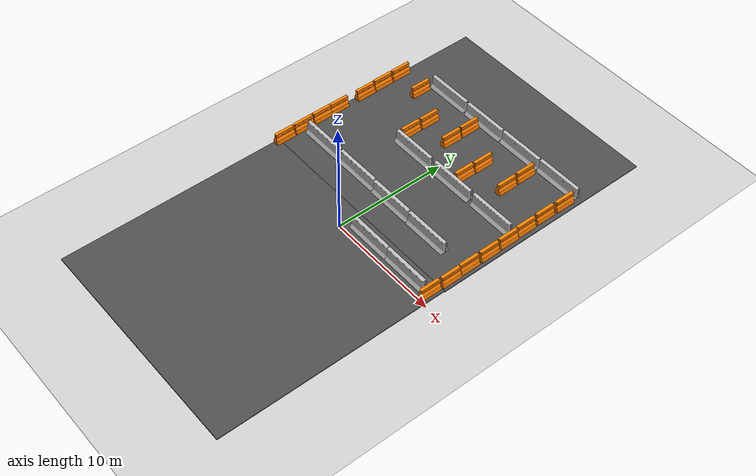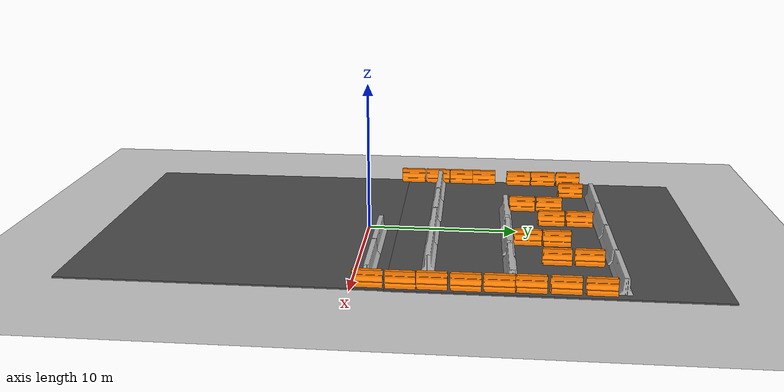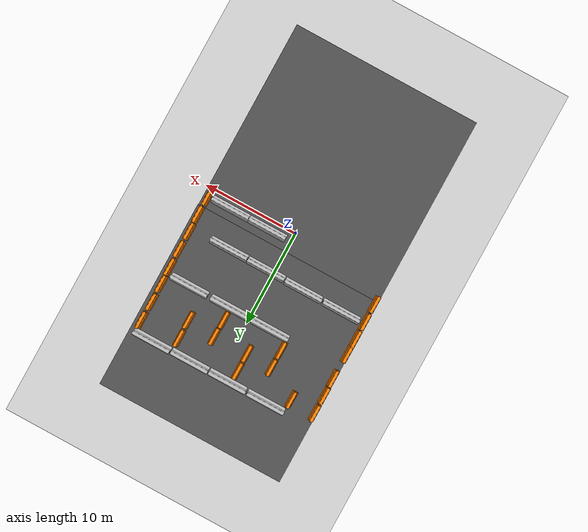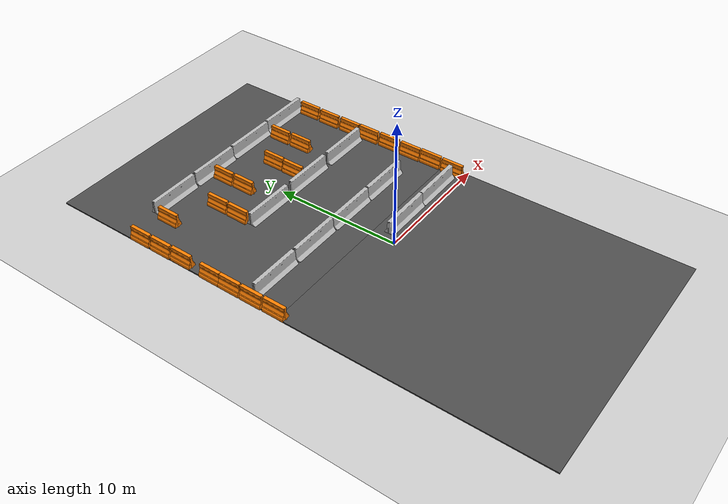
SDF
<sdf version="1.6">
 <world name="default">
  <model name="ground_plane">
   <static>1</static>
   <link name="link">
    <collision name="collision">
     <geometry><plane><normal>0 0 1</normal><size>100 100</size></plane></geometry>
     <surface>
      <contact><collide_bitmask>65535</collide_bitmask></contact>
      <friction><ode><mu>100</mu><mu2>50</mu2></ode></friction>
     </surface>
    </collision>
    <visual name="visual">
     <cast_shadows>0</cast_shadows>
     <geometry><plane><normal>0 0 1</normal><size>100 100</size></plane></geometry>
     <material>
      <script><uri>file://media/materials/scripts/gazebo.material</uri><name>Gazebo/Grey</name></script>
     </material>
    </visual>
   </link>
  </model>
  <model name="drc_practice_organge_jersey_barrier_clone_4">
   <static>1</static>
   <link name="link">
    <visual name="visual">
     <geometry>
      <mesh><uri>model://drc_practice_orange_jersey_barrier/meshes/jersey_barrier.dae</uri></mesh>
     </geometry>
    </visual>
    <collision name="collision">
     <geometry>
      <mesh><uri>model://drc_practice_orange_jersey_barrier/meshes/jersey_barrier.dae</uri></mesh>
     </geometry>
    </collision>
   </link>
   <pose>-10.0272 2.37705 0 0 -0 0</pose>
  </model>
  <model name="drc_practice_organge_jersey_barrier_clone_5">
   <static>1</static>
   <link name="link">
    <visual name="visual">
     <geometry>
      <mesh><uri>model://drc_practice_orange_jersey_barrier/meshes/jersey_barrier.dae</uri></mesh>
     </geometry>
    </visual>
    <collision name="collision">
     <geometry>
      <mesh><uri>model://drc_practice_orange_jersey_barrier/meshes/jersey_barrier.dae</uri></mesh>
     </geometry>
    </collision>
   </link>
   <pose>-10.0437 4.28242 0 0 -0 0</pose>
  </model>
  <model name="drc_practice_organge_jersey_barrier_clone_6">
   <static>1</static>
   <link name="link">
    <visual name="visual">
     <geometry>
      <mesh><uri>model://drc_practice_orange_jersey_barrier/meshes/jersey_barrier.dae</uri></mesh>
     </geometry>
    </visual>
    <collision name="collision">
     <geometry>
      <mesh><uri>model://drc_practice_orange_jersey_barrier/meshes/jersey_barrier.dae</uri></mesh>
     </geometry>
    </collision>
   </link>
   <pose>-10.0392 6.1646 0 0 -0 0</pose>
  </model>
  <model name="drc_practice_organge_jersey_barrier_clone_6_clone">
   <static>1</static>
   <link name="link">
    <visual name="visual">
     <geometry>
      <mesh><uri>model://drc_practice_orange_jersey_barrier/meshes/jersey_barrier.dae</uri></mesh>
     </geometry>
    </visual>
    <collision name="collision">
     <geometry>
      <mesh><uri>model://drc_practice_orange_jersey_barrier/meshes/jersey_barrier.dae</uri></mesh>
     </geometry>
    </collision>
   </link>
   <pose>-10.0278 7.86774 0 0 -0 0</pose>
  </model>
  <model name="drc_practice_organge_jersey_barrier_clone_12">
   <static>1</static>
   <link name="link">
    <visual name="visual">
     <geometry>
      <mesh><uri>model://drc_practice_orange_jersey_barrier/meshes/jersey_barrier.dae</uri></mesh>
     </geometry>
    </visual>
    <collision name="collision">
     <geometry>
      <mesh><uri>model://drc_practice_orange_jersey_barrier/meshes/jersey_barrier.dae</uri></mesh>
     </geometry>
    </collision>
   </link>
   <pose>9.17696 1.01342 0 0 -0 0</pose>
  </model>
  <model name="drc_practice_organge_jersey_barrier_clone_13">
   <static>1</static>
   <link name="link">
    <visual name="visual">
     <geometry>
      <mesh><uri>model://drc_practice_orange_jersey_barrier/meshes/jersey_barrier.dae</uri></mesh>
     </geometry>
    </visual>
    <collision name="collision">
     <geometry>
      <mesh><uri>model://drc_practice_orange_jersey_barrier/meshes/jersey_barrier.dae</uri></mesh>
     </geometry>
    </collision>
   </link>
   <pose>9.22815 2.94443 0 0 -0 0</pose>
  </model>
  <model name="drc_practice_organge_jersey_barrier_clone_14">
   <static>1</static>
   <link name="link">
    <visual name="visual">
     <geometry>
      <mesh><uri>model://drc_practice_orange_jersey_barrier/meshes/jersey_barrier.dae</uri></mesh>
     </geometry>
    </visual>
    <collision name="collision">
     <geometry>
      <mesh><uri>model://drc_practice_orange_jersey_barrier/meshes/jersey_barrier.dae</uri></mesh>
     </geometry>
    </collision>
   </link>
   <pose>9.17576 4.78674 0 0 -0 0</pose>
  </model>
  <model name="drc_practice_organge_jersey_barrier_clone_15">
   <static>1</static>
   <link name="link">
    <visual name="visual">
     <geometry>
      <mesh><uri>model://drc_practice_orange_jersey_barrier/meshes/jersey_barrier.dae</uri></mesh>
     </geometry>
    </visual>
    <collision name="collision">
     <geometry>
      <mesh><uri>model://drc_practice_orange_jersey_barrier/meshes/jersey_barrier.dae</uri></mesh>
     </geometry>
    </collision>
   </link>
   <pose>9.19199 6.75734 0 0 -0 0</pose>
  </model>
  <model name="drc_practice_organge_jersey_barrier_clone_16">
   <static>1</static>
   <link name="link">
    <visual name="visual">
     <geometry>
      <mesh><uri>model://drc_practice_orange_jersey_barrier/meshes/jersey_barrier.dae</uri></mesh>
     </geometry>
    </visual>
    <collision name="collision">
     <geometry>
      <mesh><uri>model://drc_practice_orange_jersey_barrier/meshes/jersey_barrier.dae</uri></mesh>
     </geometry>
    </collision>
   </link>
   <pose>9.15564 8.69157 0 0 -0 0</pose>
  </model>
  <model name="jersey_barrier_clone_2">
   <static>1</static>
   <link name="link">
    <visual name="visual">
     <geometry><mesh><uri>model://jersey_barrier/meshes/jersey_barrier.dae</uri></mesh></geometry>
    </visual>
    <collision name="upright">
     <pose>0 0 0.5715 0 -0 0</pose>
     <geometry><box><size>4.06542 0.3063 1.143</size></box></geometry>
    </collision>
    <collision name="base">
     <pose>0 0 0.032258 0 -0 0</pose>
     <geometry><box><size>4.06542 0.8107 0.064516</size></box></geometry>
    </collision>
    <collision name="base2">
     <pose>0 0 0.1 0 -0 0</pose>
     <geometry><box><size>4.06542 0.65 0.1</size></box></geometry>
    </collision>
    <collision name="base3">
     <pose>0 0 0.2 0 -0 0</pose>
     <geometry><box><size>4.06542 0.5 0.1</size></box></geometry>
    </collision>
    <collision name="left-angle">
     <pose>0 -0.224 0.2401 0.9 -0 0</pose>
     <geometry><box><size>4.06542 0.5 0.064516</size></box></geometry>
    </collision>
    <collision name="right-angle">
     <pose>0 0.224 0.2401 -0.9 0 0</pose>
     <geometry><box><size>4.06542 0.5 0.064516</size></box></geometry>
    </collision>
   </link>
   <pose>6.6228 9.40018 0 0 -0 0</pose>
  </model>
  <model name="jersey_barrier_clone_3">
   <static>1</static>
   <link name="link">
    <visual name="visual">
     <geometry><mesh><uri>model://jersey_barrier/meshes/jersey_barrier.dae</uri></mesh></geometry>
    </visual>
    <collision name="upright">
     <pose>0 0 0.5715 0 -0 0</pose>
     <geometry><box><size>4.06542 0.3063 1.143</size></box></geometry>
    </collision>
    <collision name="base">
     <pose>0 0 0.032258 0 -0 0</pose>
     <geometry><box><size>4.06542 0.8107 0.064516</size></box></geometry>
    </collision>
    <collision name="base2">
     <pose>0 0 0.1 0 -0 0</pose>
     <geometry><box><size>4.06542 0.65 0.1</size></box></geometry>
    </collision>
    <collision name="base3">
     <pose>0 0 0.2 0 -0 0</pose>
     <geometry><box><size>4.06542 0.5 0.1</size></box></geometry>
    </collision>
    <collision name="left-angle">
     <pose>0 -0.224 0.2401 0.9 -0 0</pose>
     <geometry><box><size>4.06542 0.5 0.064516</size></box></geometry>
    </collision>
    <collision name="right-angle">
     <pose>0 0.224 0.2401 -0.9 0 0</pose>
     <geometry><box><size>4.06542 0.5 0.064516</size></box></geometry>
    </collision>
   </link>
   <pose>2.21434 9.38509 0 0 -0 0</pose>
  </model>
  <model name="jersey_barrier_clone_4">
   <static>1</static>
   <link name="link">
    <visual name="visual">
     <geometry><mesh><uri>model://jersey_barrier/meshes/jersey_barrier.dae</uri></mesh></geometry>
    </visual>
    <collision name="upright">
     <pose>0 0 0.5715 0 -0 0</pose>
     <geometry><box><size>4.06542 0.3063 1.143</size></box></geometry>
    </collision>
    <collision name="base">
     <pose>0 0 0.032258 0 -0 0</pose>
     <geometry><box><size>4.06542 0.8107 0.064516</size></box></geometry>
    </collision>
    <collision name="base2">
     <pose>0 0 0.1 0 -0 0</pose>
     <geometry><box><size>4.06542 0.65 0.1</size></box></geometry>
    </collision>
    <collision name="base3">
     <pose>0 0 0.2 0 -0 0</pose>
     <geometry><box><size>4.06542 0.5 0.1</size></box></geometry>
    </collision>
    <collision name="left-angle">
     <pose>0 -0.224 0.2401 0.9 -0 0</pose>
     <geometry><box><size>4.06542 0.5 0.064516</size></box></geometry>
    </collision>
    <collision name="right-angle">
     <pose>0 0.224 0.2401 -0.9 0 0</pose>
     <geometry><box><size>4.06542 0.5 0.064516</size></box></geometry>
    </collision>
   </link>
   <pose>-2.29272 9.36712 0 0 -0 0</pose>
  </model>
  <model name="jersey_barrier_clone_9_clone_2_clone">
   <static>1</static>
   <link name="link">
    <visual name="visual">
     <geometry><mesh><uri>model://jersey_barrier/meshes/jersey_barrier.dae</uri></mesh></geometry>
    </visual>
    <collision name="upright">
     <pose>0 0 0.5715 0 -0 0</pose>
     <geometry><box><size>4.06542 0.3063 1.143</size></box></geometry>
    </collision>
    <collision name="base">
     <pose>0 0 0.032258 0 -0 0</pose>
     <geometry><box><size>4.06542 0.8107 0.064516</size></box></geometry>
    </collision>
    <collision name="base2">
     <pose>0 0 0.1 0 -0 0</pose>
     <geometry><box><size>4.06542 0.65 0.1</size></box></geometry>
    </collision>
    <collision name="base3">
     <pose>0 0 0.2 0 -0 0</pose>
     <geometry><box><size>4.06542 0.5 0.1</size></box></geometry>
    </collision>
    <collision name="left-angle">
     <pose>0 -0.224 0.2401 0.9 -0 0</pose>
     <geometry><box><size>4.06542 0.5 0.064516</size></box></geometry>
    </collision>
    <collision name="right-angle">
     <pose>0 0.224 0.2401 -0.9 0 0</pose>
     <geometry><box><size>4.06542 0.5 0.064516</size></box></geometry>
    </collision>
   </link>
   <pose>6.7172 0.879279 0 0 -0 0</pose>
  </model>
  <model name="jersey_barrier_clone_9_clone_2_clone_0">
   <static>1</static>
   <link name="link">
    <visual name="visual">
     <geometry><mesh><uri>model://jersey_barrier/meshes/jersey_barrier.dae</uri></mesh></geometry>
    </visual>
    <collision name="upright">
     <pose>0 0 0.5715 0 -0 0</pose>
     <geometry><box><size>4.06542 0.3063 1.143</size></box></geometry>
    </collision>
    <collision name="base">
     <pose>0 0 0.032258 0 -0 0</pose>
     <geometry><box><size>4.06542 0.8107 0.064516</size></box></geometry>
    </collision>
    <collision name="base2">
     <pose>0 0 0.1 0 -0 0</pose>
     <geometry><box><size>4.06542 0.65 0.1</size></box></geometry>
    </collision>
    <collision name="base3">
     <pose>0 0 0.2 0 -0 0</pose>
     <geometry><box><size>4.06542 0.5 0.1</size></box></geometry>
    </collision>
    <collision name="left-angle">
     <pose>0 -0.224 0.2401 0.9 -0 0</pose>
     <geometry><box><size>4.06542 0.5 0.064516</size></box></geometry>
    </collision>
    <collision name="right-angle">
     <pose>0 0.224 0.2401 -0.9 0 0</pose>
     <geometry><box><size>4.06542 0.5 0.064516</size></box></geometry>
    </collision>
   </link>
   <pose>2.62302 0.884714 0 0 -0 0</pose>
  </model>
  <model name="jersey_barrier_clone_9_clone_2_clone_3">
   <static>1</static>
   <link name="link">
    <visual name="visual">
     <geometry><mesh><uri>model://jersey_barrier/meshes/jersey_barrier.dae</uri></mesh></geometry>
    </visual>
    <collision name="upright">
     <pose>0 0 0.5715 0 -0 0</pose>
     <geometry><box><size>4.06542 0.3063 1.143</size></box></geometry>
    </collision>
    <collision name="base">
     <pose>0 0 0.032258 0 -0 0</pose>
     <geometry><box><size>4.06542 0.8107 0.064516</size></box></geometry>
    </collision>
    <collision name="base2">
     <pose>0 0 0.1 0 -0 0</pose>
     <geometry><box><size>4.06542 0.65 0.1</size></box></geometry>
    </collision>
    <collision name="base3">
     <pose>0 0 0.2 0 -0 0</pose>
     <geometry><box><size>4.06542 0.5 0.1</size></box></geometry>
    </collision>
    <collision name="left-angle">
     <pose>0 -0.224 0.2401 0.9 -0 0</pose>
     <geometry><box><size>4.06542 0.5 0.064516</size></box></geometry>
    </collision>
    <collision name="right-angle">
     <pose>0 0.224 0.2401 -0.9 0 0</pose>
     <geometry><box><size>4.06542 0.5 0.064516</size></box></geometry>
    </collision>
   </link>
   <pose>-7.50847 4.49224 0 0 -0 0</pose>
  </model>
  <model name="jersey_barrier_clone_9_clone_2_clone_4">
   <static>1</static>
   <link name="link">
    <visual name="visual">
     <geometry><mesh><uri>model://jersey_barrier/meshes/jersey_barrier.dae</uri></mesh></geometry>
    </visual>
    <collision name="upright">
     <pose>0 0 0.5715 0 -0 0</pose>
     <geometry><box><size>4.06542 0.3063 1.143</size></box></geometry>
    </collision>
    <collision name="base">
     <pose>0 0 0.032258 0 -0 0</pose>
     <geometry><box><size>4.06542 0.8107 0.064516</size></box></geometry>
    </collision>
    <collision name="base2">
     <pose>0 0 0.1 0 -0 0</pose>
     <geometry><box><size>4.06542 0.65 0.1</size></box></geometry>
    </collision>
    <collision name="base3">
     <pose>0 0 0.2 0 -0 0</pose>
     <geometry><box><size>4.06542 0.5 0.1</size></box></geometry>
    </collision>
    <collision name="left-angle">
     <pose>0 -0.224 0.2401 0.9 -0 0</pose>
     <geometry><box><size>4.06542 0.5 0.064516</size></box></geometry>
    </collision>
    <collision name="right-angle">
     <pose>0 0.224 0.2401 -0.9 0 0</pose>
     <geometry><box><size>4.06542 0.5 0.064516</size></box></geometry>
    </collision>
   </link>
   <pose>-3.31957 4.47818 0 0 -0 0</pose>
  </model>
  <model name="jersey_barrier_clone_9_clone_2_clone_5">
   <static>1</static>
   <link name="link">
    <visual name="visual">
     <geometry><mesh><uri>model://jersey_barrier/meshes/jersey_barrier.dae</uri></mesh></geometry>
    </visual>
    <collision name="upright">
     <pose>0 0 0.5715 0 -0 0</pose>
     <geometry><box><size>4.06542 0.3063 1.143</size></box></geometry>
    </collision>
    <collision name="base">
     <pose>0 0 0.032258 0 -0 0</pose>
     <geometry><box><size>4.06542 0.8107 0.064516</size></box></geometry>
    </collision>
    <collision name="base2">
     <pose>0 0 0.1 0 -0 0</pose>
     <geometry><box><size>4.06542 0.65 0.1</size></box></geometry>
    </collision>
    <collision name="base3">
     <pose>0 0 0.2 0 -0 0</pose>
     <geometry><box><size>4.06542 0.5 0.1</size></box></geometry>
    </collision>
    <collision name="left-angle">
     <pose>0 -0.224 0.2401 0.9 -0 0</pose>
     <geometry><box><size>4.06542 0.5 0.064516</size></box></geometry>
    </collision>
    <collision name="right-angle">
     <pose>0 0.224 0.2401 -0.9 0 0</pose>
     <geometry><box><size>4.06542 0.5 0.064516</size></box></geometry>
    </collision>
   </link>
   <pose>0.836995 4.4255 0 0 -0 0</pose>
  </model>
  <model name="jersey_barrier_clone_9_clone_2_clone_6">
   <static>1</static>
   <link name="link">
    <visual name="visual">
     <geometry><mesh><uri>model://jersey_barrier/meshes/jersey_barrier.dae</uri></mesh></geometry>
    </visual>
    <collision name="upright">
     <pose>0 0 0.5715 0 -0 0</pose>
     <geometry><box><size>4.06542 0.3063 1.143</size></box></geometry>
    </collision>
    <collision name="base">
     <pose>0 0 0.032258 0 -0 0</pose>
     <geometry><box><size>4.06542 0.8107 0.064516</size></box></geometry>
    </collision>
    <collision name="base2">
     <pose>0 0 0.1 0 -0 0</pose>
     <geometry><box><size>4.06542 0.65 0.1</size></box></geometry>
    </collision>
    <collision name="base3">
     <pose>0 0 0.2 0 -0 0</pose>
     <geometry><box><size>4.06542 0.5 0.1</size></box></geometry>
    </collision>
    <collision name="left-angle">
     <pose>0 -0.224 0.2401 0.9 -0 0</pose>
     <geometry><box><size>4.06542 0.5 0.064516</size></box></geometry>
    </collision>
    <collision name="right-angle">
     <pose>0 0.224 0.2401 -0.9 0 0</pose>
     <geometry><box><size>4.06542 0.5 0.064516</size></box></geometry>
    </collision>
   </link>
   <pose>4.95926 4.40906 0 0 -0 0</pose>
  </model>
  <model name="drc_practice_organge_jersey_barrier_clone_6_clone_clone">
   <static>1</static>
   <link name="link">
    <visual name="visual">
     <geometry>
      <mesh><uri>model://drc_practice_orange_jersey_barrier/meshes/jersey_barrier.dae</uri></mesh>
     </geometry>
    </visual>
    <collision name="collision">
     <geometry>
      <mesh><uri>model://drc_practice_orange_jersey_barrier/meshes/jersey_barrier.dae</uri></mesh>
     </geometry>
    </collision>
   </link>
   <pose>-9.95696 10.5819 0 0 -0 0</pose>
  </model>
  <model name="drc_practice_organge_jersey_barrier_clone_6_clone_clone_0">
   <static>1</static>
   <link name="link">
    <visual name="visual">
     <geometry>
      <mesh><uri>model://drc_practice_orange_jersey_barrier/meshes/jersey_barrier.dae</uri></mesh>
     </geometry>
    </visual>
    <collision name="collision">
     <geometry>
      <mesh><uri>model://drc_practice_orange_jersey_barrier/meshes/jersey_barrier.dae</uri></mesh>
     </geometry>
    </collision>
   </link>
   <pose>-9.99438 12.4645 0 0 -0 0</pose>
  </model>
  <model name="drc_practice_organge_jersey_barrier_clone_6_clone_clone_1">
   <static>1</static>
   <link name="link">
    <visual name="visual">
     <geometry>
      <mesh><uri>model://drc_practice_orange_jersey_barrier/meshes/jersey_barrier.dae</uri></mesh>
     </geometry>
    </visual>
    <collision name="collision">
     <geometry>
      <mesh><uri>model://drc_practice_orange_jersey_barrier/meshes/jersey_barrier.dae</uri></mesh>
     </geometry>
    </collision>
   </link>
   <pose>-9.99653 14.3771 0 0 -0 0</pose>
  </model>
  <model name="drc_practice_organge_jersey_barrier_clone_6_clone_clone_2">
   <static>1</static>
   <link name="link">
    <visual name="visual">
     <geometry>
      <mesh><uri>model://drc_practice_orange_jersey_barrier/meshes/jersey_barrier.dae</uri></mesh>
     </geometry>
    </visual>
    <collision name="collision">
     <geometry>
      <mesh><uri>model://drc_practice_orange_jersey_barrier/meshes/jersey_barrier.dae</uri></mesh>
     </geometry>
    </collision>
   </link>
   <pose>9.1132 10.5333 0 0 -0 0</pose>
  </model>
  <model name="drc_practice_organge_jersey_barrier_clone_6_clone_clone_3">
   <static>1</static>
   <link name="link">
    <visual name="visual">
     <geometry>
      <mesh><uri>model://drc_practice_orange_jersey_barrier/meshes/jersey_barrier.dae</uri></mesh>
     </geometry>
    </visual>
    <collision name="collision">
     <geometry>
      <mesh><uri>model://drc_practice_orange_jersey_barrier/meshes/jersey_barrier.dae</uri></mesh>
     </geometry>
    </collision>
   </link>
   <pose>9.08437 12.521 0 0 -0 0</pose>
  </model>
  <model name="drc_practice_organge_jersey_barrier_clone_6_clone_clone_4">
   <static>1</static>
   <link name="link">
    <visual name="visual">
     <geometry>
      <mesh><uri>model://drc_practice_orange_jersey_barrier/meshes/jersey_barrier.dae</uri></mesh>
     </geometry>
    </visual>
    <collision name="collision">
     <geometry>
      <mesh><uri>model://drc_practice_orange_jersey_barrier/meshes/jersey_barrier.dae</uri></mesh>
     </geometry>
    </collision>
   </link>
   <pose>9.12511 14.5381 0 0 -0 0</pose>
  </model>
  <model name="jersey_barrier_clone_10">
   <static>1</static>
   <link name="link">
    <visual name="visual">
     <geometry><mesh><uri>model://jersey_barrier/meshes/jersey_barrier.dae</uri></mesh></geometry>
    </visual>
    <collision name="upright">
     <pose>0 0 0.5715 0 -0 0</pose>
     <geometry><box><size>4.06542 0.3063 1.143</size></box></geometry>
    </collision>
    <collision name="base">
     <pose>0 0 0.032258 0 -0 0</pose>
     <geometry><box><size>4.06542 0.8107 0.064516</size></box></geometry>
    </collision>
    <collision name="base2">
     <pose>0 0 0.1 0 -0 0</pose>
     <geometry><box><size>4.06542 0.65 0.1</size></box></geometry>
    </collision>
    <collision name="base3">
     <pose>0 0 0.2 0 -0 0</pose>
     <geometry><box><size>4.06542 0.5 0.1</size></box></geometry>
    </collision>
    <collision name="left-angle">
     <pose>0 -0.224 0.2401 0.9 -0 0</pose>
     <geometry><box><size>4.06542 0.5 0.064516</size></box></geometry>
    </collision>
    <collision name="right-angle">
     <pose>0 0.224 0.2401 -0.9 0 0</pose>
     <geometry><box><size>4.06542 0.5 0.064516</size></box></geometry>
    </collision>
   </link>
   <pose>7.21955 15.8787 0 0 -0 0</pose>
  </model>
  <model name="jersey_barrier_clone_11">
   <static>1</static>
   <link name="link">
    <visual name="visual">
     <geometry><mesh><uri>model://jersey_barrier/meshes/jersey_barrier.dae</uri></mesh></geometry>
    </visual>
    <collision name="upright">
     <pose>0 0 0.5715 0 -0 0</pose>
     <geometry><box><size>4.06542 0.3063 1.143</size></box></geometry>
    </collision>
    <collision name="base">
     <pose>0 0 0.032258 0 -0 0</pose>
     <geometry><box><size>4.06542 0.8107 0.064516</size></box></geometry>
    </collision>
    <collision name="base2">
     <pose>0 0 0.1 0 -0 0</pose>
     <geometry><box><size>4.06542 0.65 0.1</size></box></geometry>
    </collision>
    <collision name="base3">
     <pose>0 0 0.2 0 -0 0</pose>
     <geometry><box><size>4.06542 0.5 0.1</size></box></geometry>
    </collision>
    <collision name="left-angle">
     <pose>0 -0.224 0.2401 0.9 -0 0</pose>
     <geometry><box><size>4.06542 0.5 0.064516</size></box></geometry>
    </collision>
    <collision name="right-angle">
     <pose>0 0.224 0.2401 -0.9 0 0</pose>
     <geometry><box><size>4.06542 0.5 0.064516</size></box></geometry>
    </collision>
   </link>
   <pose>3.064 15.8169 0 0 -0 0</pose>
  </model>
  <model name="jersey_barrier_clone_12">
   <static>1</static>
   <link name="link">
    <visual name="visual">
     <geometry><mesh><uri>model://jersey_barrier/meshes/jersey_barrier.dae</uri></mesh></geometry>
    </visual>
    <collision name="upright">
     <pose>0 0 0.5715 0 -0 0</pose>
     <geometry><box><size>4.06542 0.3063 1.143</size></box></geometry>
    </collision>
    <collision name="base">
     <pose>0 0 0.032258 0 -0 0</pose>
     <geometry><box><size>4.06542 0.8107 0.064516</size></box></geometry>
    </collision>
    <collision name="base2">
     <pose>0 0 0.1 0 -0 0</pose>
     <geometry><box><size>4.06542 0.65 0.1</size></box></geometry>
    </collision>
    <collision name="base3">
     <pose>0 0 0.2 0 -0 0</pose>
     <geometry><box><size>4.06542 0.5 0.1</size></box></geometry>
    </collision>
    <collision name="left-angle">
     <pose>0 -0.224 0.2401 0.9 -0 0</pose>
     <geometry><box><size>4.06542 0.5 0.064516</size></box></geometry>
    </collision>
    <collision name="right-angle">
     <pose>0 0.224 0.2401 -0.9 0 0</pose>
     <geometry><box><size>4.06542 0.5 0.064516</size></box></geometry>
    </collision>
   </link>
   <pose>-1.09213 15.7892 0 0 -0 0</pose>
  </model>
  <model name="jersey_barrier_clone_13">
   <static>1</static>
   <link name="link">
    <visual name="visual">
     <geometry><mesh><uri>model://jersey_barrier/meshes/jersey_barrier.dae</uri></mesh></geometry>
    </visual>
    <collision name="upright">
     <pose>0 0 0.5715 0 -0 0</pose>
     <geometry><box><size>4.06542 0.3063 1.143</size></box></geometry>
    </collision>
    <collision name="base">
     <pose>0 0 0.032258 0 -0 0</pose>
     <geometry><box><size>4.06542 0.8107 0.064516</size></box></geometry>
    </collision>
    <collision name="base2">
     <pose>0 0 0.1 0 -0 0</pose>
     <geometry><box><size>4.06542 0.65 0.1</size></box></geometry>
    </collision>
    <collision name="base3">
     <pose>0 0 0.2 0 -0 0</pose>
     <geometry><box><size>4.06542 0.5 0.1</size></box></geometry>
    </collision>
    <collision name="left-angle">
     <pose>0 -0.224 0.2401 0.9 -0 0</pose>
     <geometry><box><size>4.06542 0.5 0.064516</size></box></geometry>
    </collision>
    <collision name="right-angle">
     <pose>0 0.224 0.2401 -0.9 0 0</pose>
     <geometry><box><size>4.06542 0.5 0.064516</size></box></geometry>
    </collision>
   </link>
   <pose>-5.31824 15.7958 0 0 -0 0</pose>
  </model>
  <model name="drc_practice_organge_jersey_barrier_clone_6_clone_clone_2_clone">
   <static>1</static>
   <link name="link">
    <visual name="visual">
     <geometry>
      <mesh><uri>model://drc_practice_orange_jersey_barrier/meshes/jersey_barrier.dae</uri></mesh>
     </geometry>
    </visual>
    <collision name="collision">
     <geometry>
      <mesh><uri>model://drc_practice_orange_jersey_barrier/meshes/jersey_barrier.dae</uri></mesh>
     </geometry>
    </collision>
   </link>
   <pose>-4.21742 10.605 0 0 -0 0</pose>
  </model>
  <model name="drc_practice_organge_jersey_barrier_clone_6_clone_clone_2_clone_0">
   <static>1</static>
   <link name="link">
    <visual name="visual">
     <geometry>
      <mesh><uri>model://drc_practice_orange_jersey_barrier/meshes/jersey_barrier.dae</uri></mesh>
     </geometry>
    </visual>
    <collision name="collision">
     <geometry>
      <mesh><uri>model://drc_practice_orange_jersey_barrier/meshes/jersey_barrier.dae</uri></mesh>
     </geometry>
    </collision>
   </link>
   <pose>-4.19127 12.52 0 0 -0 0</pose>
  </model>
  <model name="drc_practice_organge_jersey_barrier_clone_6_clone_clone_2_clone_1">
   <static>1</static>
   <link name="link">
    <visual name="visual">
     <geometry>
      <mesh><uri>model://drc_practice_orange_jersey_barrier/meshes/jersey_barrier.dae</uri></mesh>
     </geometry>
    </visual>
    <collision name="collision">
     <geometry>
      <mesh><uri>model://drc_practice_orange_jersey_barrier/meshes/jersey_barrier.dae</uri></mesh>
     </geometry>
    </collision>
   </link>
   <pose>-7.38122 14.3398 0 0 -0 0</pose>
  </model>
  <model name="drc_practice_organge_jersey_barrier_clone_6_clone_clone_2_clone_2">
   <static>1</static>
   <link name="link">
    <visual name="visual">
     <geometry>
      <mesh><uri>model://drc_practice_orange_jersey_barrier/meshes/jersey_barrier.dae</uri></mesh>
     </geometry>
    </visual>
    <collision name="collision">
     <geometry>
      <mesh><uri>model://drc_practice_orange_jersey_barrier/meshes/jersey_barrier.dae</uri></mesh>
     </geometry>
    </collision>
   </link>
   <pose>-1.47305 14.3788 0 0 -0 0</pose>
  </model>
  <model name="drc_practice_organge_jersey_barrier_clone_6_clone_clone_2_clone_3">
   <static>1</static>
   <link name="link">
    <visual name="visual">
     <geometry>
      <mesh><uri>model://drc_practice_orange_jersey_barrier/meshes/jersey_barrier.dae</uri></mesh>
     </geometry>
    </visual>
    <collision name="collision">
     <geometry>
      <mesh><uri>model://drc_practice_orange_jersey_barrier/meshes/jersey_barrier.dae</uri></mesh>
     </geometry>
    </collision>
   </link>
   <pose>-1.46054 12.4688 0 0 -0 0</pose>
  </model>
  <model name="drc_practice_organge_jersey_barrier_clone_6_clone_clone_2_clone_4">
   <static>1</static>
   <link name="link">
    <visual name="visual">
     <geometry>
      <mesh><uri>model://drc_practice_orange_jersey_barrier/meshes/jersey_barrier.dae</uri></mesh>
     </geometry>
    </visual>
    <collision name="collision">
     <geometry>
      <mesh><uri>model://drc_practice_orange_jersey_barrier/meshes/jersey_barrier.dae</uri></mesh>
     </geometry>
    </collision>
   </link>
   <pose>2.0911 10.6815 0 0 -0 0</pose>
  </model>
  <model name="drc_practice_organge_jersey_barrier_clone_6_clone_clone_2_clone_5">
   <static>1</static>
   <link name="link">
    <visual name="visual">
     <geometry>
      <mesh><uri>model://drc_practice_orange_jersey_barrier/meshes/jersey_barrier.dae</uri></mesh>
     </geometry>
    </visual>
    <collision name="collision">
     <geometry>
      <mesh><uri>model://drc_practice_orange_jersey_barrier/meshes/jersey_barrier.dae</uri></mesh>
     </geometry>
    </collision>
   </link>
   <pose>2.14437 12.5619 0 0 -0 0</pose>
  </model>
  <model name="drc_practice_organge_jersey_barrier_clone_6_clone_clone_2_clone_6">
   <static>1</static>
   <link name="link">
    <visual name="visual">
     <geometry>
      <mesh><uri>model://drc_practice_orange_jersey_barrier/meshes/jersey_barrier.dae</uri></mesh>
     </geometry>
    </visual>
    <collision name="collision">
     <geometry>
      <mesh><uri>model://drc_practice_orange_jersey_barrier/meshes/jersey_barrier.dae</uri></mesh>
     </geometry>
    </collision>
   </link>
   <pose>5.06534 14.3177 0 0 -0 0</pose>
  </model>
  <model name="drc_practice_organge_jersey_barrier_clone_6_clone_clone_2_clone_7">
   <static>1</static>
   <link name="link">
    <visual name="visual">
     <geometry>
      <mesh><uri>model://drc_practice_orange_jersey_barrier/meshes/jersey_barrier.dae</uri></mesh>
     </geometry>
    </visual>
    <collision name="collision">
     <geometry>
      <mesh><uri>model://drc_practice_orange_jersey_barrier/meshes/jersey_barrier.dae</uri></mesh>
     </geometry>
    </collision>
   </link>
   <pose>5.08716 12.3377 0 0 -0 0</pose>
  </model>
  <model name="asphalt_plane">
   <static>1</static>
   <link name="link">
    <collision name="collision"><geometry><box><size>20 20 0.1</size></box></geometry></collision>
    <visual name="visual">
     <cast_shadows>0</cast_shadows>
     <geometry><box><size>20 20 0.1</size></box></geometry>
     <material>
      <script>
       <uri>model://asphalt_plane/materials/scripts</uri>
       <uri>model://asphalt_plane/materials/textures</uri>
       <name>vrc/asphalt</name>
      </script>
     </material>
    </visual>
   </link>
   <pose>-0.308483 -7.98775 0 0 -0 0</pose>
  </model>
  <model name="asphalt_plane_0">
   <static>1</static>
   <link name="link">
    <collision name="collision"><geometry><box><size>20 20 0.1</size></box></geometry></collision>
    <visual name="visual">
     <cast_shadows>0</cast_shadows>
     <geometry><box><size>20 20 0.1</size></box></geometry>
     <material>
      <script>
       <uri>model://asphalt_plane/materials/scripts</uri>
       <uri>model://asphalt_plane/materials/textures</uri>
       <name>vrc/asphalt</name>
      </script>
     </material>
    </visual>
   </link>
   <pose>-0.251342 12.0013 0 0 -0 0</pose>
  </model>
 </world>
</sdf>
